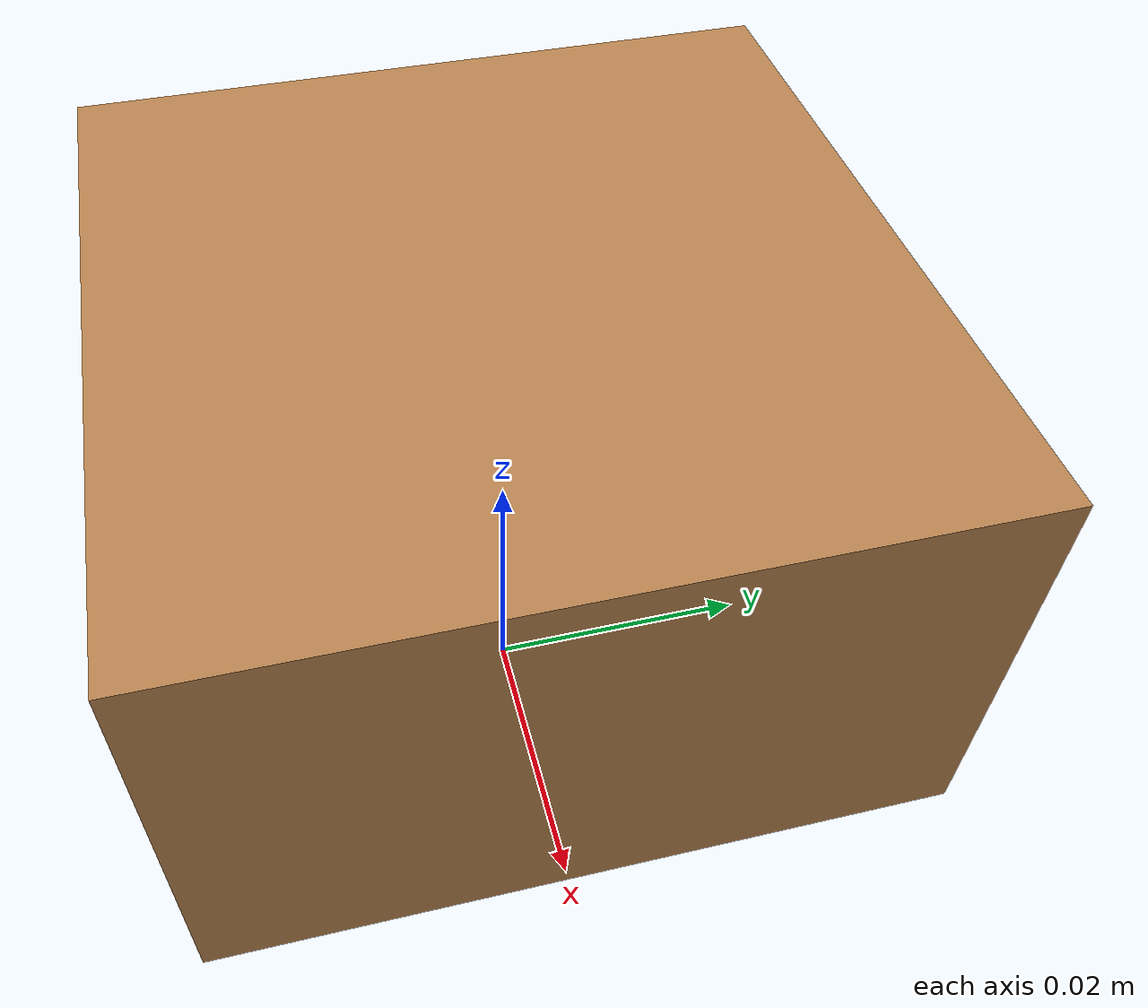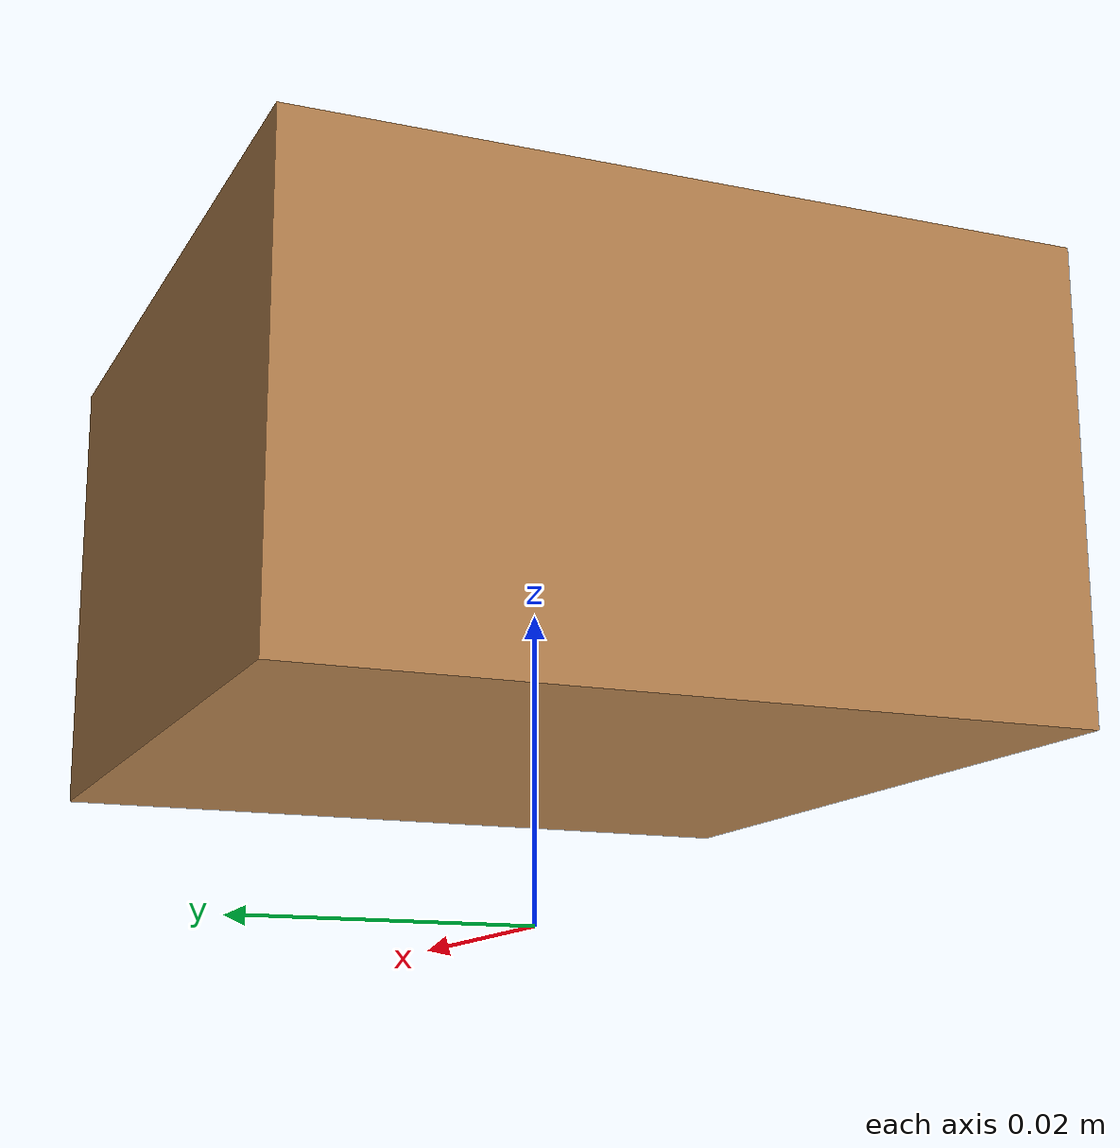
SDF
<?xml version="1.0" ?>

<sdf version="1.6">

<!-- Boxes -->
  <model name="box1">
      <link name="box_link">
          <pose>0 0 0.025 0 0 0</pose>
          <inertial>
              <mass>0.001</mass>
              <inertia>
                  <ixx>2.3541666666666672e-05</ixx>
                  <ixy>0</ixy>
                  <ixz>0</ixz>
                  <iyy>2.3541666666666672e-05</iyy>
                  <iyz>0</iyz>
                  <izz>2.3541666666666672e-05</izz>
              </inertia>
          </inertial>
          <collision name="collision">
              <geometry>
                  <box>
                      <size>0.05 0.05 0.03</size>
                  </box>
              </geometry>
              <surface>
                  <contact>
                      <poissons_ratio>0.347</poissons_ratio>
                      <elastic_modulus>8.8e+09</elastic_modulus>
                      <ode>
                          <kp>100000</kp>
                          <kd>1</kd>
                          <max_vel>1.0</max_vel>
                          <min_depth>0.001</min_depth>
                      </ode>
                  </contact>
                  <friction>
                      <torsional>
                          <coefficient>1.0</coefficient>
                          <use_patch_radius>0</use_patch_radius>
                          <surface_radius>0.05</surface_radius>
                      </torsional>
                  </friction>
              </surface>
          </collision>
          <visual name="visual">
              <geometry>
                  <box>
                      <size>0.05 0.05 0.03</size>
                  </box>
              </geometry>
              <material>
                  <script>
                      <uri>file://media/materials/scripts/gazebo.material</uri>
                      <name>Gazebo/Wood</name>
                  </script>
              </material>
          </visual>
      </link>
  </model>
</sdf>
